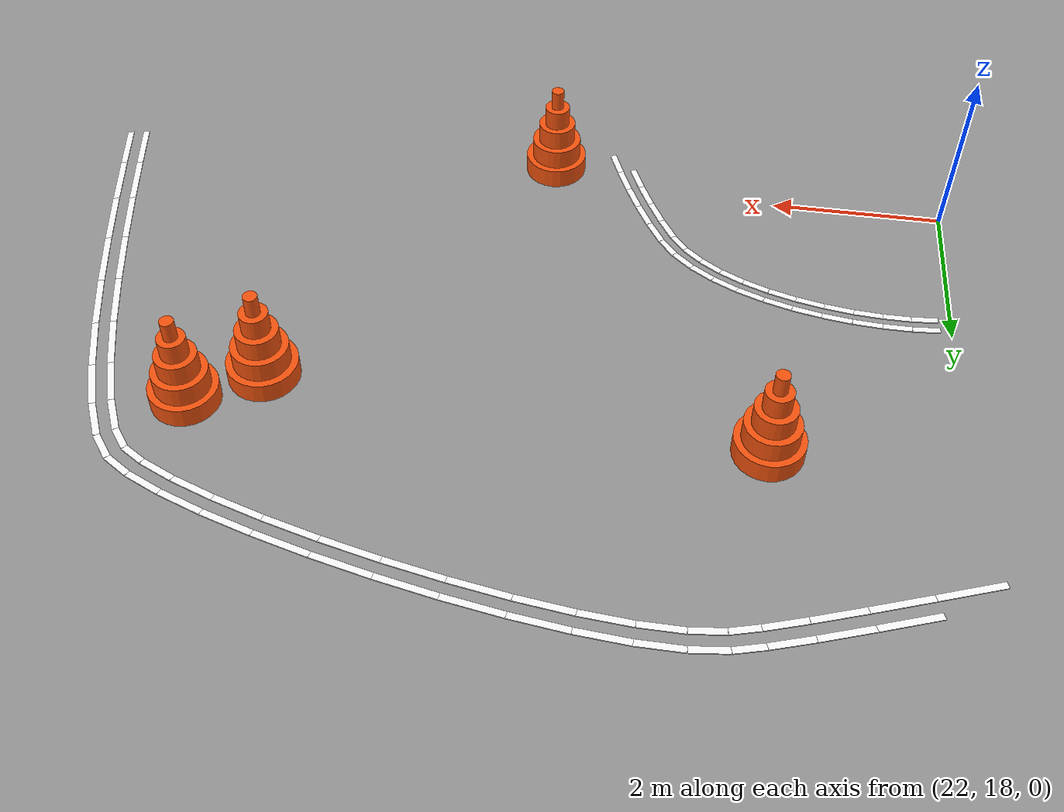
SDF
<sdf version="1.9">
 <world name="igvc_competition">
  <model name="Line_001_0008">
   <static>1</static>
   <pose>32.0992 17.9567 0.011 0 0 1.763602</pose>
   <link name="link">
    <visual name="visual">
     <geometry><box><size>0.6409 0.0762 0.012</size></box></geometry>
     <material>
      <ambient>0.98 0.98 0.98 1</ambient>
      <diffuse>0.98 0.98 0.98 1</diffuse>
      <specular>0.05 0.05 0.05 1</specular>
      <emissive>0.9 0.9 0.9 1</emissive>
     </material>
    </visual>
   </link>
  </model>
  <model name="Line_001_0009">
   <static>1</static>
   <pose>32.2955 17.9952 0.011 0 0 1.763583</pose>
   <link name="link">
    <visual name="visual">
     <geometry><box><size>0.6425 0.0762 0.012</size></box></geometry>
     <material>
      <ambient>0.98 0.98 0.98 1</ambient>
      <diffuse>0.98 0.98 0.98 1</diffuse>
      <specular>0.05 0.05 0.05 1</specular>
      <emissive>0.9 0.9 0.9 1</emissive>
     </material>
    </visual>
   </link>
  </model>
  <model name="Line_001_0010">
   <static>1</static>
   <pose>31.9671 18.6151 0.011 0 0 1.773386</pose>
   <link name="link">
    <visual name="visual">
     <geometry><box><size>0.7023 0.0762 0.012</size></box></geometry>
     <material>
      <ambient>0.98 0.98 0.98 1</ambient>
      <diffuse>0.98 0.98 0.98 1</diffuse>
      <specular>0.05 0.05 0.05 1</specular>
      <emissive>0.9 0.9 0.9 1</emissive>
     </material>
    </visual>
   </link>
  </model>
  <model name="Line_001_0011">
   <static>1</static>
   <pose>32.1630 18.6555 0.011 0 0 1.773314</pose>
   <link name="link">
    <visual name="visual">
     <geometry><box><size>0.7045 0.0762 0.012</size></box></geometry>
     <material>
      <ambient>0.98 0.98 0.98 1</ambient>
      <diffuse>0.98 0.98 0.98 1</diffuse>
      <specular>0.05 0.05 0.05 1</specular>
      <emissive>0.9 0.9 0.9 1</emissive>
     </material>
    </visual>
   </link>
  </model>
  <model name="Line_001_0012">
   <static>1</static>
   <pose>31.8181 19.3171 0.011 0 0 1.786358</pose>
   <link name="link">
    <visual name="visual">
     <geometry><box><size>0.7331 0.0762 0.012</size></box></geometry>
     <material>
      <ambient>0.98 0.98 0.98 1</ambient>
      <diffuse>0.98 0.98 0.98 1</diffuse>
      <specular>0.05 0.05 0.05 1</specular>
      <emissive>0.9 0.9 0.9 1</emissive>
     </material>
    </visual>
   </link>
  </model>
  <model name="Line_001_0013">
   <static>1</static>
   <pose>32.0134 19.3602 0.011 0 0 1.786519</pose>
   <link name="link">
    <visual name="visual">
     <geometry><box><size>0.7363 0.0762 0.012</size></box></geometry>
     <material>
      <ambient>0.98 0.98 0.98 1</ambient>
      <diffuse>0.98 0.98 0.98 1</diffuse>
      <specular>0.05 0.05 0.05 1</specular>
      <emissive>0.9 0.9 0.9 1</emissive>
     </material>
    </visual>
   </link>
  </model>
  <model name="Line_001_0014">
   <static>1</static>
   <pose>31.6548 20.0320 0.011 0 0 1.804432</pose>
   <link name="link">
    <visual name="visual">
     <geometry><box><size>0.7334 0.0762 0.012</size></box></geometry>
     <material>
      <ambient>0.98 0.98 0.98 1</ambient>
      <diffuse>0.98 0.98 0.98 1</diffuse>
      <specular>0.05 0.05 0.05 1</specular>
      <emissive>0.9 0.9 0.9 1</emissive>
     </material>
    </visual>
   </link>
  </model>
  <model name="Line_001_0015">
   <static>1</static>
   <pose>31.8492 20.0786 0.011 0 0 1.804332</pose>
   <link name="link">
    <visual name="visual">
     <geometry><box><size>0.7376 0.0762 0.012</size></box></geometry>
     <material>
      <ambient>0.98 0.98 0.98 1</ambient>
      <diffuse>0.98 0.98 0.98 1</diffuse>
      <specular>0.05 0.05 0.05 1</specular>
      <emissive>0.9 0.9 0.9 1</emissive>
     </material>
    </visual>
   </link>
  </model>
  <model name="Line_001_0016">
   <static>1</static>
   <pose>31.4800 20.7287 0.011 0 0 1.829155</pose>
   <link name="link">
    <visual name="visual">
     <geometry><box><size>0.7033 0.0762 0.012</size></box></geometry>
     <material>
      <ambient>0.98 0.98 0.98 1</ambient>
      <diffuse>0.98 0.98 0.98 1</diffuse>
      <specular>0.05 0.05 0.05 1</specular>
      <emissive>0.9 0.9 0.9 1</emissive>
     </material>
    </visual>
   </link>
  </model>
  <model name="Line_001_0017">
   <static>1</static>
   <pose>31.6732 20.7803 0.011 0 0 1.829211</pose>
   <link name="link">
    <visual name="visual">
     <geometry><box><size>0.7095 0.0762 0.012</size></box></geometry>
     <material>
      <ambient>0.98 0.98 0.98 1</ambient>
      <diffuse>0.98 0.98 0.98 1</diffuse>
      <specular>0.05 0.05 0.05 1</specular>
      <emissive>0.9 0.9 0.9 1</emissive>
     </material>
    </visual>
   </link>
  </model>
  <model name="Line_001_0018">
   <static>1</static>
   <pose>31.2968 21.3763 0.011 0 0 1.865441</pose>
   <link name="link">
    <visual name="visual">
     <geometry><box><size>0.6429 0.0762 0.012</size></box></geometry>
     <material>
      <ambient>0.98 0.98 0.98 1</ambient>
      <diffuse>0.98 0.98 0.98 1</diffuse>
      <specular>0.05 0.05 0.05 1</specular>
      <emissive>0.9 0.9 0.9 1</emissive>
     </material>
    </visual>
   </link>
  </model>
  <model name="Line_001_0019">
   <static>1</static>
   <pose>31.4879 21.4354 0.011 0 0 1.865395</pose>
   <link name="link">
    <visual name="visual">
     <geometry><box><size>0.6523 0.0762 0.012</size></box></geometry>
     <material>
      <ambient>0.98 0.98 0.98 1</ambient>
      <diffuse>0.98 0.98 0.98 1</diffuse>
      <specular>0.05 0.05 0.05 1</specular>
      <emissive>0.9 0.9 0.9 1</emissive>
     </material>
    </visual>
   </link>
  </model>
  <model name="Line_001_0020">
   <static>1</static>
   <pose>31.1084 21.9432 0.011 0 0 1.922213</pose>
   <link name="link">
    <visual name="visual">
     <geometry><box><size>0.5523 0.0762 0.012</size></box></geometry>
     <material>
      <ambient>0.98 0.98 0.98 1</ambient>
      <diffuse>0.98 0.98 0.98 1</diffuse>
      <specular>0.05 0.05 0.05 1</specular>
      <emissive>0.9 0.9 0.9 1</emissive>
     </material>
    </visual>
   </link>
  </model>
  <model name="Line_001_0021">
   <static>1</static>
   <pose>31.2953 22.0141 0.011 0 0 1.922726</pose>
   <link name="link">
    <visual name="visual">
     <geometry><box><size>0.5680 0.0762 0.012</size></box></geometry>
     <material>
      <ambient>0.98 0.98 0.98 1</ambient>
      <diffuse>0.98 0.98 0.98 1</diffuse>
      <specular>0.05 0.05 0.05 1</specular>
      <emissive>0.9 0.9 0.9 1</emissive>
     </material>
    </visual>
   </link>
  </model>
  <model name="Line_001_0022">
   <static>1</static>
   <pose>30.9195 22.3961 0.011 0 0 2.022287</pose>
   <link name="link">
    <visual name="visual">
     <geometry><box><size>0.4304 0.0762 0.012</size></box></geometry>
     <material>
      <ambient>0.98 0.98 0.98 1</ambient>
      <diffuse>0.98 0.98 0.98 1</diffuse>
      <specular>0.05 0.05 0.05 1</specular>
      <emissive>0.9 0.9 0.9 1</emissive>
     </material>
    </visual>
   </link>
  </model>
  <model name="Line_001_0023">
   <static>1</static>
   <pose>31.0962 22.4884 0.011 0 0 2.024280</pose>
   <link name="link">
    <visual name="visual">
     <geometry><box><size>0.4620 0.0762 0.012</size></box></geometry>
     <material>
      <ambient>0.98 0.98 0.98 1</ambient>
      <diffuse>0.98 0.98 0.98 1</diffuse>
      <specular>0.05 0.05 0.05 1</specular>
      <emissive>0.9 0.9 0.9 1</emissive>
     </material>
    </visual>
   </link>
  </model>
  <model name="Line_001_0024">
   <static>1</static>
   <pose>30.7373 22.7022 0.011 0 0 2.236530</pose>
   <link name="link">
    <visual name="visual">
     <geometry><box><size>0.2861 0.0762 0.012</size></box></geometry>
     <material>
      <ambient>0.98 0.98 0.98 1</ambient>
      <diffuse>0.98 0.98 0.98 1</diffuse>
      <specular>0.05 0.05 0.05 1</specular>
      <emissive>0.9 0.9 0.9 1</emissive>
     </material>
    </visual>
   </link>
  </model>
  <model name="Line_001_0025">
   <static>1</static>
   <pose>30.8888 22.8298 0.011 0 0 2.241879</pose>
   <link name="link">
    <visual name="visual">
     <geometry><box><size>0.3416 0.0762 0.012</size></box></geometry>
     <material>
      <ambient>0.98 0.98 0.98 1</ambient>
      <diffuse>0.98 0.98 0.98 1</diffuse>
      <specular>0.05 0.05 0.05 1</specular>
      <emissive>0.9 0.9 0.9 1</emissive>
     </material>
    </visual>
   </link>
  </model>
  <model name="Line_001_0026">
   <static>1</static>
   <pose>30.5274 22.8905 0.011 0 0 2.584104</pose>
   <link name="link">
    <visual name="visual">
     <geometry><box><size>0.2864 0.0762 0.012</size></box></geometry>
     <material>
      <ambient>0.98 0.98 0.98 1</ambient>
      <diffuse>0.98 0.98 0.98 1</diffuse>
      <specular>0.05 0.05 0.05 1</specular>
      <emissive>0.9 0.9 0.9 1</emissive>
     </material>
    </visual>
   </link>
  </model>
  <model name="Line_001_0027">
   <static>1</static>
   <pose>30.6416 23.0529 0.011 0 0 2.576104</pose>
   <link name="link">
    <visual name="visual">
     <geometry><box><size>0.3339 0.0762 0.012</size></box></geometry>
     <material>
      <ambient>0.98 0.98 0.98 1</ambient>
      <diffuse>0.98 0.98 0.98 1</diffuse>
      <specular>0.05 0.05 0.05 1</specular>
      <emissive>0.9 0.9 0.9 1</emissive>
     </material>
    </visual>
   </link>
  </model>
  <model name="Line_001_0028">
   <static>1</static>
   <pose>30.2178 23.0513 0.011 0 0 2.716508</pose>
   <link name="link">
    <visual name="visual">
     <geometry><box><size>0.4130 0.0762 0.012</size></box></geometry>
     <material>
      <ambient>0.98 0.98 0.98 1</ambient>
      <diffuse>0.98 0.98 0.98 1</diffuse>
      <specular>0.05 0.05 0.05 1</specular>
      <emissive>0.9 0.9 0.9 1</emissive>
     </material>
    </visual>
   </link>
  </model>
  <model name="Line_001_0029">
   <static>1</static>
   <pose>30.3031 23.2320 0.011 0 0 2.715881</pose>
   <link name="link">
    <visual name="visual">
     <geometry><box><size>0.4339 0.0762 0.012</size></box></geometry>
     <material>
      <ambient>0.98 0.98 0.98 1</ambient>
      <diffuse>0.98 0.98 0.98 1</diffuse>
      <specular>0.05 0.05 0.05 1</specular>
      <emissive>0.9 0.9 0.9 1</emissive>
     </material>
    </visual>
   </link>
  </model>
  <model name="Line_001_0030">
   <static>1</static>
   <pose>29.7892 23.2248 0.011 0 0 2.789836</pose>
   <link name="link">
    <visual name="visual">
     <geometry><box><size>0.5123 0.0762 0.012</size></box></geometry>
     <material>
      <ambient>0.98 0.98 0.98 1</ambient>
      <diffuse>0.98 0.98 0.98 1</diffuse>
      <specular>0.05 0.05 0.05 1</specular>
      <emissive>0.9 0.9 0.9 1</emissive>
     </material>
    </visual>
   </link>
  </model>
  <model name="Line_001_0031">
   <static>1</static>
   <pose>29.8593 23.4120 0.011 0 0 2.789694</pose>
   <link name="link">
    <visual name="visual">
     <geometry><box><size>0.5245 0.0762 0.012</size></box></geometry>
     <material>
      <ambient>0.98 0.98 0.98 1</ambient>
      <diffuse>0.98 0.98 0.98 1</diffuse>
      <specular>0.05 0.05 0.05 1</specular>
      <emissive>0.9 0.9 0.9 1</emissive>
     </material>
    </visual>
   </link>
  </model>
  <model name="Line_001_0032">
   <static>1</static>
   <pose>29.2683 23.4007 0.011 0 0 2.838454</pose>
   <link name="link">
    <visual name="visual">
     <geometry><box><size>0.5879 0.0762 0.012</size></box></geometry>
     <material>
      <ambient>0.98 0.98 0.98 1</ambient>
      <diffuse>0.98 0.98 0.98 1</diffuse>
      <specular>0.05 0.05 0.05 1</specular>
      <emissive>0.9 0.9 0.9 1</emissive>
     </material>
    </visual>
   </link>
  </model>
  <model name="Line_001_0033">
   <static>1</static>
   <pose>29.3285 23.5914 0.011 0 0 2.838558</pose>
   <link name="link">
    <visual name="visual">
     <geometry><box><size>0.5965 0.0762 0.012</size></box></geometry>
     <material>
      <ambient>0.98 0.98 0.98 1</ambient>
      <diffuse>0.98 0.98 0.98 1</diffuse>
      <specular>0.05 0.05 0.05 1</specular>
      <emissive>0.9 0.9 0.9 1</emissive>
     </material>
    </visual>
   </link>
  </model>
  <model name="Line_001_0034">
   <static>1</static>
   <pose>28.6787 23.5726 0.011 0 0 2.875861</pose>
   <link name="link">
    <visual name="visual">
     <geometry><box><size>0.6405 0.0762 0.012</size></box></geometry>
     <material>
      <ambient>0.98 0.98 0.98 1</ambient>
      <diffuse>0.98 0.98 0.98 1</diffuse>
      <specular>0.05 0.05 0.05 1</specular>
      <emissive>0.9 0.9 0.9 1</emissive>
     </material>
    </visual>
   </link>
  </model>
  <model name="Line_001_0035">
   <static>1</static>
   <pose>28.7315 23.7655 0.011 0 0 2.875747</pose>
   <link name="link">
    <visual name="visual">
     <geometry><box><size>0.6474 0.0762 0.012</size></box></geometry>
     <material>
      <ambient>0.98 0.98 0.98 1</ambient>
      <diffuse>0.98 0.98 0.98 1</diffuse>
      <specular>0.05 0.05 0.05 1</specular>
      <emissive>0.9 0.9 0.9 1</emissive>
     </material>
    </visual>
   </link>
  </model>
  <model name="Line_001_0036">
   <static>1</static>
   <pose>28.0437 23.7343 0.011 0 0 2.907905</pose>
   <link name="link">
    <visual name="visual">
     <geometry><box><size>0.6702 0.0762 0.012</size></box></geometry>
     <material>
      <ambient>0.98 0.98 0.98 1</ambient>
      <diffuse>0.98 0.98 0.98 1</diffuse>
      <specular>0.05 0.05 0.05 1</specular>
      <emissive>0.9 0.9 0.9 1</emissive>
     </material>
    </visual>
   </link>
  </model>
  <model name="Line_001_0037">
   <static>1</static>
   <pose>28.0900 23.9288 0.011 0 0 2.907980</pose>
   <link name="link">
    <visual name="visual">
     <geometry><box><size>0.6765 0.0762 0.012</size></box></geometry>
     <material>
      <ambient>0.98 0.98 0.98 1</ambient>
      <diffuse>0.98 0.98 0.98 1</diffuse>
      <specular>0.05 0.05 0.05 1</specular>
      <emissive>0.9 0.9 0.9 1</emissive>
     </material>
    </visual>
   </link>
  </model>
  <model name="Line_001_0038">
   <static>1</static>
   <pose>27.3861 23.8800 0.011 0 0 2.939071</pose>
   <link name="link">
    <visual name="visual">
     <geometry><box><size>0.6771 0.0762 0.012</size></box></geometry>
     <material>
      <ambient>0.98 0.98 0.98 1</ambient>
      <diffuse>0.98 0.98 0.98 1</diffuse>
      <specular>0.05 0.05 0.05 1</specular>
      <emissive>0.9 0.9 0.9 1</emissive>
     </material>
    </visual>
   </link>
  </model>
  <model name="Line_001_0039">
   <static>1</static>
   <pose>27.4262 24.0759 0.011 0 0 2.938918</pose>
   <link name="link">
    <visual name="visual">
     <geometry><box><size>0.6836 0.0762 0.012</size></box></geometry>
     <material>
      <ambient>0.98 0.98 0.98 1</ambient>
      <diffuse>0.98 0.98 0.98 1</diffuse>
      <specular>0.05 0.05 0.05 1</specular>
      <emissive>0.9 0.9 0.9 1</emissive>
     </material>
    </visual>
   </link>
  </model>
  <model name="Line_001_0040">
   <static>1</static>
   <pose>26.7285 24.0039 0.011 0 0 2.972019</pose>
   <link name="link">
    <visual name="visual">
     <geometry><box><size>0.6613 0.0762 0.012</size></box></geometry>
     <material>
      <ambient>0.98 0.98 0.98 1</ambient>
      <diffuse>0.98 0.98 0.98 1</diffuse>
      <specular>0.05 0.05 0.05 1</specular>
      <emissive>0.9 0.9 0.9 1</emissive>
     </material>
    </visual>
   </link>
  </model>
  <model name="Line_001_0041">
   <static>1</static>
   <pose>26.7619 24.2011 0.011 0 0 2.972189</pose>
   <link name="link">
    <visual name="visual">
     <geometry><box><size>0.6685 0.0762 0.012</size></box></geometry>
     <material>
      <ambient>0.98 0.98 0.98 1</ambient>
      <diffuse>0.98 0.98 0.98 1</diffuse>
      <specular>0.05 0.05 0.05 1</specular>
      <emissive>0.9 0.9 0.9 1</emissive>
     </material>
    </visual>
   </link>
  </model>
  <model name="Line_001_0042">
   <static>1</static>
   <pose>26.0938 24.1002 0.011 0 0 3.011025</pose>
   <link name="link">
    <visual name="visual">
     <geometry><box><size>0.6229 0.0762 0.012</size></box></geometry>
     <material>
      <ambient>0.98 0.98 0.98 1</ambient>
      <diffuse>0.98 0.98 0.98 1</diffuse>
      <specular>0.05 0.05 0.05 1</specular>
      <emissive>0.9 0.9 0.9 1</emissive>
     </material>
    </visual>
   </link>
  </model>
  <model name="Line_001_0043">
   <static>1</static>
   <pose>26.1193 24.2985 0.011 0 0 3.010955</pose>
   <link name="link">
    <visual name="visual">
     <geometry><box><size>0.6318 0.0762 0.012</size></box></geometry>
     <material>
      <ambient>0.98 0.98 0.98 1</ambient>
      <diffuse>0.98 0.98 0.98 1</diffuse>
      <specular>0.05 0.05 0.05 1</specular>
      <emissive>0.9 0.9 0.9 1</emissive>
     </material>
    </visual>
   </link>
  </model>
  <model name="Line_001_0044">
   <static>1</static>
   <pose>25.5050 24.1634 0.011 0 0 3.061230</pose>
   <link name="link">
    <visual name="visual">
     <geometry><box><size>0.5618 0.0762 0.012</size></box></geometry>
     <material>
      <ambient>0.98 0.98 0.98 1</ambient>
      <diffuse>0.98 0.98 0.98 1</diffuse>
      <specular>0.05 0.05 0.05 1</specular>
      <emissive>0.9 0.9 0.9 1</emissive>
     </material>
    </visual>
   </link>
  </model>
  <model name="Line_001_0045">
   <static>1</static>
   <pose>25.5199 24.3627 0.011 0 0 3.061402</pose>
   <link name="link">
    <visual name="visual">
     <geometry><box><size>0.5742 0.0762 0.012</size></box></geometry>
     <material>
      <ambient>0.98 0.98 0.98 1</ambient>
      <diffuse>0.98 0.98 0.98 1</diffuse>
      <specular>0.05 0.05 0.05 1</specular>
      <emissive>0.9 0.9 0.9 1</emissive>
     </material>
    </visual>
   </link>
  </model>
  <model name="Line_001_0046">
   <static>1</static>
   <pose>24.9858 24.1877 0.011 0 0 3.134068</pose>
   <link name="link">
    <visual name="visual">
     <geometry><box><size>0.4784 0.0762 0.012</size></box></geometry>
     <material>
      <ambient>0.98 0.98 0.98 1</ambient>
      <diffuse>0.98 0.98 0.98 1</diffuse>
      <specular>0.05 0.05 0.05 1</specular>
      <emissive>0.9 0.9 0.9 1</emissive>
     </material>
    </visual>
   </link>
  </model>
  <model name="Line_001_0047">
   <static>1</static>
   <pose>24.9849 24.3875 0.011 0 0 3.134358</pose>
   <link name="link">
    <visual name="visual">
     <geometry><box><size>0.4976 0.0762 0.012</size></box></geometry>
     <material>
      <ambient>0.98 0.98 0.98 1</ambient>
      <diffuse>0.98 0.98 0.98 1</diffuse>
      <specular>0.05 0.05 0.05 1</specular>
      <emissive>0.9 0.9 0.9 1</emissive>
     </material>
    </visual>
   </link>
  </model>
  <model name="Line_001_0048">
   <static>1</static>
   <pose>24.5595 24.1684 0.011 0 0 -3.029029</pose>
   <link name="link">
    <visual name="visual">
     <geometry><box><size>0.3766 0.0762 0.012</size></box></geometry>
     <material>
      <ambient>0.98 0.98 0.98 1</ambient>
      <diffuse>0.98 0.98 0.98 1</diffuse>
      <specular>0.05 0.05 0.05 1</specular>
      <emissive>0.9 0.9 0.9 1</emissive>
     </material>
    </visual>
   </link>
  </model>
  <model name="Line_001_0049">
   <static>1</static>
   <pose>24.5358 24.3665 0.011 0 0 -3.028279</pose>
   <link name="link">
    <visual name="visual">
     <geometry><box><size>0.4033 0.0762 0.012</size></box></geometry>
     <material>
      <ambient>0.98 0.98 0.98 1</ambient>
      <diffuse>0.98 0.98 0.98 1</diffuse>
      <specular>0.05 0.05 0.05 1</specular>
      <emissive>0.9 0.9 0.9 1</emissive>
     </material>
    </visual>
   </link>
  </model>
  <model name="Line_001_0050">
   <static>1</static>
   <pose>24.2183 24.1061 0.011 0 0 -2.881253</pose>
   <link name="link">
    <visual name="visual">
     <geometry><box><size>0.3189 0.0762 0.012</size></box></geometry>
     <material>
      <ambient>0.98 0.98 0.98 1</ambient>
      <diffuse>0.98 0.98 0.98 1</diffuse>
      <specular>0.05 0.05 0.05 1</specular>
      <emissive>0.9 0.9 0.9 1</emissive>
     </material>
    </visual>
   </link>
  </model>
  <model name="Line_001_0051">
   <static>1</static>
   <pose>24.1718 24.3004 0.011 0 0 -2.882780</pose>
   <link name="link">
    <visual name="visual">
     <geometry><box><size>0.3384 0.0762 0.012</size></box></geometry>
     <material>
      <ambient>0.98 0.98 0.98 1</ambient>
      <diffuse>0.98 0.98 0.98 1</diffuse>
      <specular>0.05 0.05 0.05 1</specular>
      <emissive>0.9 0.9 0.9 1</emissive>
     </material>
    </visual>
   </link>
  </model>
  <model name="Line_001_0052">
   <static>1</static>
   <pose>23.8422 23.9946 0.011 0 0 -2.833958</pose>
   <link name="link">
    <visual name="visual">
     <geometry><box><size>0.4660 0.0762 0.012</size></box></geometry>
     <material>
      <ambient>0.98 0.98 0.98 1</ambient>
      <diffuse>0.98 0.98 0.98 1</diffuse>
      <specular>0.05 0.05 0.05 1</specular>
      <emissive>0.9 0.9 0.9 1</emissive>
     </material>
    </visual>
   </link>
  </model>
  <model name="Line_001_0053">
   <static>1</static>
   <pose>23.7829 24.1855 0.011 0 0 -2.834154</pose>
   <link name="link">
    <visual name="visual">
     <geometry><box><size>0.4729 0.0762 0.012</size></box></geometry>
     <material>
      <ambient>0.98 0.98 0.98 1</ambient>
      <diffuse>0.98 0.98 0.98 1</diffuse>
      <specular>0.05 0.05 0.05 1</specular>
      <emissive>0.9 0.9 0.9 1</emissive>
     </material>
    </visual>
   </link>
  </model>
  <model name="Line_001_0054">
   <static>1</static>
   <pose>23.3445 23.8302 0.011 0 0 -2.813597</pose>
   <link name="link">
    <visual name="visual">
     <geometry><box><size>0.5823 0.0762 0.012</size></box></geometry>
     <material>
      <ambient>0.98 0.98 0.98 1</ambient>
      <diffuse>0.98 0.98 0.98 1</diffuse>
      <specular>0.05 0.05 0.05 1</specular>
      <emissive>0.9 0.9 0.9 1</emissive>
     </material>
    </visual>
   </link>
  </model>
  <model name="Line_001_0055">
   <static>1</static>
   <pose>23.2805 24.0197 0.011 0 0 -2.813576</pose>
   <link name="link">
    <visual name="visual">
     <geometry><box><size>0.5854 0.0762 0.012</size></box></geometry>
     <material>
      <ambient>0.98 0.98 0.98 1</ambient>
      <diffuse>0.98 0.98 0.98 1</diffuse>
      <specular>0.05 0.05 0.05 1</specular>
      <emissive>0.9 0.9 0.9 1</emissive>
     </material>
    </visual>
   </link>
  </model>
  <model name="Line_001_0056">
   <static>1</static>
   <pose>22.7523 23.6252 0.011 0 0 -2.803673</pose>
   <link name="link">
    <visual name="visual">
     <geometry><box><size>0.6708 0.0762 0.012</size></box></geometry>
     <material>
      <ambient>0.98 0.98 0.98 1</ambient>
      <diffuse>0.98 0.98 0.98 1</diffuse>
      <specular>0.05 0.05 0.05 1</specular>
      <emissive>0.9 0.9 0.9 1</emissive>
     </material>
    </visual>
   </link>
  </model>
  <model name="Line_001_0057">
   <static>1</static>
   <pose>22.6863 23.8140 0.011 0 0 -2.803752</pose>
   <link name="link">
    <visual name="visual">
     <geometry><box><size>0.6722 0.0762 0.012</size></box></geometry>
     <material>
      <ambient>0.98 0.98 0.98 1</ambient>
      <diffuse>0.98 0.98 0.98 1</diffuse>
      <specular>0.05 0.05 0.05 1</specular>
      <emissive>0.9 0.9 0.9 1</emissive>
     </material>
    </visual>
   </link>
  </model>
  <model name="Line_001_0058">
   <static>1</static>
   <pose>22.0911 23.3913 0.011 0 0 -2.799883</pose>
   <link name="link">
    <visual name="visual">
     <geometry><box><size>0.7320 0.0762 0.012</size></box></geometry>
     <material>
      <ambient>0.98 0.98 0.98 1</ambient>
      <diffuse>0.98 0.98 0.98 1</diffuse>
      <specular>0.05 0.05 0.05 1</specular>
      <emissive>0.9 0.9 0.9 1</emissive>
     </material>
    </visual>
   </link>
  </model>
  <model name="Line_002_0017">
   <static>1</static>
   <pose>25.9868 17.4586 0.011 0 0 1.928847</pose>
   <link name="link">
    <visual name="visual">
     <geometry><box><size>0.3416 0.0762 0.012</size></box></geometry>
     <material>
      <ambient>0.98 0.98 0.98 1</ambient>
      <diffuse>0.98 0.98 0.98 1</diffuse>
      <specular>0.05 0.05 0.05 1</specular>
      <emissive>0.9 0.9 0.9 1</emissive>
     </material>
    </visual>
   </link>
  </model>
  <model name="Line_002_0018">
   <static>1</static>
   <pose>25.7096 17.7184 0.011 0 0 1.960844</pose>
   <link name="link">
    <visual name="visual">
     <geometry><box><size>0.3406 0.0762 0.012</size></box></geometry>
     <material>
      <ambient>0.98 0.98 0.98 1</ambient>
      <diffuse>0.98 0.98 0.98 1</diffuse>
      <specular>0.05 0.05 0.05 1</specular>
      <emissive>0.9 0.9 0.9 1</emissive>
     </material>
    </visual>
   </link>
  </model>
  <model name="Line_002_0019">
   <static>1</static>
   <pose>25.8612 17.7784 0.011 0 0 1.960538</pose>
   <link name="link">
    <visual name="visual">
     <geometry><box><size>0.3458 0.0762 0.012</size></box></geometry>
     <material>
      <ambient>0.98 0.98 0.98 1</ambient>
      <diffuse>0.98 0.98 0.98 1</diffuse>
      <specular>0.05 0.05 0.05 1</specular>
      <emissive>0.9 0.9 0.9 1</emissive>
     </material>
    </visual>
   </link>
  </model>
  <model name="Line_002_0020">
   <static>1</static>
   <pose>25.5746 18.0302 0.011 0 0 1.998034</pose>
   <link name="link">
    <visual name="visual">
     <geometry><box><size>0.3391 0.0762 0.012</size></box></geometry>
     <material>
      <ambient>0.98 0.98 0.98 1</ambient>
      <diffuse>0.98 0.98 0.98 1</diffuse>
      <specular>0.05 0.05 0.05 1</specular>
      <emissive>0.9 0.9 0.9 1</emissive>
     </material>
    </visual>
   </link>
  </model>
  <model name="Line_002_0021">
   <static>1</static>
   <pose>25.7239 18.0956 0.011 0 0 1.998190</pose>
   <link name="link">
    <visual name="visual">
     <geometry><box><size>0.3455 0.0762 0.012</size></box></geometry>
     <material>
      <ambient>0.98 0.98 0.98 1</ambient>
      <diffuse>0.98 0.98 0.98 1</diffuse>
      <specular>0.05 0.05 0.05 1</specular>
      <emissive>0.9 0.9 0.9 1</emissive>
     </material>
    </visual>
   </link>
  </model>
  <model name="Line_002_0022">
   <static>1</static>
   <pose>25.4286 18.3329 0.011 0 0 2.042634</pose>
   <link name="link">
    <visual name="visual">
     <geometry><box><size>0.3331 0.0762 0.012</size></box></geometry>
     <material>
      <ambient>0.98 0.98 0.98 1</ambient>
      <diffuse>0.98 0.98 0.98 1</diffuse>
      <specular>0.05 0.05 0.05 1</specular>
      <emissive>0.9 0.9 0.9 1</emissive>
     </material>
    </visual>
   </link>
  </model>
  <model name="Line_002_0023">
   <static>1</static>
   <pose>25.5748 18.4045 0.011 0 0 2.042846</pose>
   <link name="link">
    <visual name="visual">
     <geometry><box><size>0.3407 0.0762 0.012</size></box></geometry>
     <material>
      <ambient>0.98 0.98 0.98 1</ambient>
      <diffuse>0.98 0.98 0.98 1</diffuse>
      <specular>0.05 0.05 0.05 1</specular>
      <emissive>0.9 0.9 0.9 1</emissive>
     </material>
    </visual>
   </link>
  </model>
  <model name="Line_002_0024">
   <static>1</static>
   <pose>25.2726 18.6196 0.011 0 0 2.096531</pose>
   <link name="link">
    <visual name="visual">
     <geometry><box><size>0.3200 0.0762 0.012</size></box></geometry>
     <material>
      <ambient>0.98 0.98 0.98 1</ambient>
      <diffuse>0.98 0.98 0.98 1</diffuse>
      <specular>0.05 0.05 0.05 1</specular>
      <emissive>0.9 0.9 0.9 1</emissive>
     </material>
    </visual>
   </link>
  </model>
  <model name="Line_002_0025">
   <static>1</static>
   <pose>25.4133 18.7009 0.011 0 0 2.097430</pose>
   <link name="link">
    <visual name="visual">
     <geometry><box><size>0.3346 0.0762 0.012</size></box></geometry>
     <material>
      <ambient>0.98 0.98 0.98 1</ambient>
      <diffuse>0.98 0.98 0.98 1</diffuse>
      <specular>0.05 0.05 0.05 1</specular>
      <emissive>0.9 0.9 0.9 1</emissive>
     </material>
    </visual>
   </link>
  </model>
  <model name="Line_002_0026">
   <static>1</static>
   <pose>25.1155 18.8571 0.011 0 0 2.230091</pose>
   <link name="link">
    <visual name="visual">
     <geometry><box><size>0.2508 0.0762 0.012</size></box></geometry>
     <material>
      <ambient>0.98 0.98 0.98 1</ambient>
      <diffuse>0.98 0.98 0.98 1</diffuse>
      <specular>0.05 0.05 0.05 1</specular>
      <emissive>0.9 0.9 0.9 1</emissive>
     </material>
    </visual>
   </link>
  </model>
  <model name="Line_002_0027">
   <static>1</static>
   <pose>25.2448 18.9541 0.011 0 0 2.231234</pose>
   <link name="link">
    <visual name="visual">
     <geometry><box><size>0.2752 0.0762 0.012</size></box></geometry>
     <material>
      <ambient>0.98 0.98 0.98 1</ambient>
      <diffuse>0.98 0.98 0.98 1</diffuse>
      <specular>0.05 0.05 0.05 1</specular>
      <emissive>0.9 0.9 0.9 1</emissive>
     </material>
    </visual>
   </link>
  </model>
  <model name="Line_002_0028">
   <static>1</static>
   <pose>24.9403 19.0446 0.011 0 0 2.409677</pose>
   <link name="link">
    <visual name="visual">
     <geometry><box><size>0.2646 0.0762 0.012</size></box></geometry>
     <material>
      <ambient>0.98 0.98 0.98 1</ambient>
      <diffuse>0.98 0.98 0.98 1</diffuse>
      <specular>0.05 0.05 0.05 1</specular>
      <emissive>0.9 0.9 0.9 1</emissive>
     </material>
    </visual>
   </link>
  </model>
  <model name="Line_002_0029">
   <static>1</static>
   <pose>25.0526 19.1598 0.011 0 0 2.408624</pose>
   <link name="link">
    <visual name="visual">
     <geometry><box><size>0.2901 0.0762 0.012</size></box></geometry>
     <material>
      <ambient>0.98 0.98 0.98 1</ambient>
      <diffuse>0.98 0.98 0.98 1</diffuse>
      <specular>0.05 0.05 0.05 1</specular>
      <emissive>0.9 0.9 0.9 1</emissive>
     </material>
    </visual>
   </link>
  </model>
  <model name="Line_002_0030">
   <static>1</static>
   <pose>24.7240 19.2116 0.011 0 0 2.553590</pose>
   <link name="link">
    <visual name="visual">
     <geometry><box><size>0.2834 0.0762 0.012</size></box></geometry>
     <material>
      <ambient>0.98 0.98 0.98 1</ambient>
      <diffuse>0.98 0.98 0.98 1</diffuse>
      <specular>0.05 0.05 0.05 1</specular>
      <emissive>0.9 0.9 0.9 1</emissive>
     </material>
    </visual>
   </link>
  </model>
  <model name="Line_002_0031">
   <static>1</static>
   <pose>24.8182 19.3413 0.011 0 0 2.553317</pose>
   <link name="link">
    <visual name="visual">
     <geometry><box><size>0.3044 0.0762 0.012</size></box></geometry>
     <material>
      <ambient>0.98 0.98 0.98 1</ambient>
      <diffuse>0.98 0.98 0.98 1</diffuse>
      <specular>0.05 0.05 0.05 1</specular>
      <emissive>0.9 0.9 0.9 1</emissive>
     </material>
    </visual>
   </link>
  </model>
  <model name="Line_002_0032">
   <static>1</static>
   <pose>24.4721 19.3584 0.011 0 0 2.670957</pose>
   <link name="link">
    <visual name="visual">
     <geometry><box><size>0.3008 0.0762 0.012</size></box></geometry>
     <material>
      <ambient>0.98 0.98 0.98 1</ambient>
      <diffuse>0.98 0.98 0.98 1</diffuse>
      <specular>0.05 0.05 0.05 1</specular>
      <emissive>0.9 0.9 0.9 1</emissive>
     </material>
    </visual>
   </link>
  </model>
  <model name="Line_002_0033">
   <static>1</static>
   <pose>24.5498 19.4980 0.011 0 0 2.670500</pose>
   <link name="link">
    <visual name="visual">
     <geometry><box><size>0.3184 0.0762 0.012</size></box></geometry>
     <material>
      <ambient>0.98 0.98 0.98 1</ambient>
      <diffuse>0.98 0.98 0.98 1</diffuse>
      <specular>0.05 0.05 0.05 1</specular>
      <emissive>0.9 0.9 0.9 1</emissive>
     </material>
    </visual>
   </link>
  </model>
  <model name="Line_002_0034">
   <static>1</static>
   <pose>24.1912 19.4841 0.011 0 0 2.768092</pose>
   <link name="link">
    <visual name="visual">
     <geometry><box><size>0.3154 0.0762 0.012</size></box></geometry>
     <material>
      <ambient>0.98 0.98 0.98 1</ambient>
      <diffuse>0.98 0.98 0.98 1</diffuse>
      <specular>0.05 0.05 0.05 1</specular>
      <emissive>0.9 0.9 0.9 1</emissive>
     </material>
    </visual>
   </link>
  </model>
  <model name="Line_002_0035">
   <static>1</static>
   <pose>24.2542 19.6305 0.011 0 0 2.768115</pose>
   <link name="link">
    <visual name="visual">
     <geometry><box><size>0.3303 0.0762 0.012</size></box></geometry>
     <material>
      <ambient>0.98 0.98 0.98 1</ambient>
      <diffuse>0.98 0.98 0.98 1</diffuse>
      <specular>0.05 0.05 0.05 1</specular>
      <emissive>0.9 0.9 0.9 1</emissive>
     </material>
    </visual>
   </link>
  </model>
  <model name="Line_002_0036">
   <static>1</static>
   <pose>23.8882 19.5882 0.011 0 0 2.852076</pose>
   <link name="link">
    <visual name="visual">
     <geometry><box><size>0.3258 0.0762 0.012</size></box></geometry>
     <material>
      <ambient>0.98 0.98 0.98 1</ambient>
      <diffuse>0.98 0.98 0.98 1</diffuse>
      <specular>0.05 0.05 0.05 1</specular>
      <emissive>0.9 0.9 0.9 1</emissive>
     </material>
    </visual>
   </link>
  </model>
  <model name="Line_002_0037">
   <static>1</static>
   <pose>23.9381 19.7392 0.011 0 0 2.851860</pose>
   <link name="link">
    <visual name="visual">
     <geometry><box><size>0.3388 0.0762 0.012</size></box></geometry>
     <material>
      <ambient>0.98 0.98 0.98 1</ambient>
      <diffuse>0.98 0.98 0.98 1</diffuse>
      <specular>0.05 0.05 0.05 1</specular>
      <emissive>0.9 0.9 0.9 1</emissive>
     </material>
    </visual>
   </link>
  </model>
  <model name="Line_002_0038">
   <static>1</static>
   <pose>23.5703 19.6701 0.011 0 0 2.926263</pose>
   <link name="link">
    <visual name="visual">
     <geometry><box><size>0.3314 0.0762 0.012</size></box></geometry>
     <material>
      <ambient>0.98 0.98 0.98 1</ambient>
      <diffuse>0.98 0.98 0.98 1</diffuse>
      <specular>0.05 0.05 0.05 1</specular>
      <emissive>0.9 0.9 0.9 1</emissive>
     </material>
    </visual>
   </link>
  </model>
  <model name="Line_002_0039">
   <static>1</static>
   <pose>23.6080 19.8242 0.011 0 0 2.926431</pose>
   <link name="link">
    <visual name="visual">
     <geometry><box><size>0.3433 0.0762 0.012</size></box></geometry>
     <material>
      <ambient>0.98 0.98 0.98 1</ambient>
      <diffuse>0.98 0.98 0.98 1</diffuse>
      <specular>0.05 0.05 0.05 1</specular>
      <emissive>0.9 0.9 0.9 1</emissive>
     </material>
    </visual>
   </link>
  </model>
  <model name="Line_002_0040">
   <static>1</static>
   <pose>23.2444 19.7295 0.011 0 0 2.996028</pose>
   <link name="link">
    <visual name="visual">
     <geometry><box><size>0.3316 0.0762 0.012</size></box></geometry>
     <material>
      <ambient>0.98 0.98 0.98 1</ambient>
      <diffuse>0.98 0.98 0.98 1</diffuse>
      <specular>0.05 0.05 0.05 1</specular>
      <emissive>0.9 0.9 0.9 1</emissive>
     </material>
    </visual>
   </link>
  </model>
  <model name="Line_002_0041">
   <static>1</static>
   <pose>23.2706 19.8858 0.011 0 0 2.995945</pose>
   <link name="link">
    <visual name="visual">
     <geometry><box><size>0.3431 0.0762 0.012</size></box></geometry>
     <material>
      <ambient>0.98 0.98 0.98 1</ambient>
      <diffuse>0.98 0.98 0.98 1</diffuse>
      <specular>0.05 0.05 0.05 1</specular>
      <emissive>0.9 0.9 0.9 1</emissive>
     </material>
    </visual>
   </link>
  </model>
  <model name="Line_002_0042">
   <static>1</static>
   <pose>22.9175 19.7662 0.011 0 0 3.064327</pose>
   <link name="link">
    <visual name="visual">
     <geometry><box><size>0.3265 0.0762 0.012</size></box></geometry>
     <material>
      <ambient>0.98 0.98 0.98 1</ambient>
      <diffuse>0.98 0.98 0.98 1</diffuse>
      <specular>0.05 0.05 0.05 1</specular>
      <emissive>0.9 0.9 0.9 1</emissive>
     </material>
    </visual>
   </link>
  </model>
  <model name="Line_002_0043">
   <static>1</static>
   <pose>22.9322 19.9238 0.011 0 0 3.064027</pose>
   <link name="link">
    <visual name="visual">
     <geometry><box><size>0.3381 0.0762 0.012</size></box></geometry>
     <material>
      <ambient>0.98 0.98 0.98 1</ambient>
      <diffuse>0.98 0.98 0.98 1</diffuse>
      <specular>0.05 0.05 0.05 1</specular>
      <emissive>0.9 0.9 0.9 1</emissive>
     </material>
    </visual>
   </link>
  </model>
  <model name="Line_002_0044">
   <static>1</static>
   <pose>22.5968 19.7800 0.011 0 0 3.133995</pose>
   <link name="link">
    <visual name="visual">
     <geometry><box><size>0.3159 0.0762 0.012</size></box></geometry>
     <material>
      <ambient>0.98 0.98 0.98 1</ambient>
      <diffuse>0.98 0.98 0.98 1</diffuse>
      <specular>0.05 0.05 0.05 1</specular>
      <emissive>0.9 0.9 0.9 1</emissive>
     </material>
    </visual>
   </link>
  </model>
  <model name="Line_002_0045">
   <static>1</static>
   <pose>22.5996 19.9381 0.011 0 0 3.134280</pose>
   <link name="link">
    <visual name="visual">
     <geometry><box><size>0.3282 0.0762 0.012</size></box></geometry>
     <material>
      <ambient>0.98 0.98 0.98 1</ambient>
      <diffuse>0.98 0.98 0.98 1</diffuse>
      <specular>0.05 0.05 0.05 1</specular>
      <emissive>0.9 0.9 0.9 1</emissive>
     </material>
    </visual>
   </link>
  </model>
  <model name="Line_002_0046">
   <static>1</static>
   <pose>22.2894 19.7709 0.011 0 0 -3.072805</pose>
   <link name="link">
    <visual name="visual">
     <geometry><box><size>0.2997 0.0762 0.012</size></box></geometry>
     <material>
      <ambient>0.98 0.98 0.98 1</ambient>
      <diffuse>0.98 0.98 0.98 1</diffuse>
      <specular>0.05 0.05 0.05 1</specular>
      <emissive>0.9 0.9 0.9 1</emissive>
     </material>
    </visual>
   </link>
  </model>
  <model name="Line_002_0047">
   <static>1</static>
   <pose>22.2790 19.9285 0.011 0 0 -3.072670</pose>
   <link name="link">
    <visual name="visual">
     <geometry><box><size>0.3136 0.0762 0.012</size></box></geometry>
     <material>
      <ambient>0.98 0.98 0.98 1</ambient>
      <diffuse>0.98 0.98 0.98 1</diffuse>
      <specular>0.05 0.05 0.05 1</specular>
      <emissive>0.9 0.9 0.9 1</emissive>
     </material>
    </visual>
   </link>
  </model>
  <model name="Cones_001">
   <static>1</static>
   <pose>30.2149 22.0732 0 0 0 0</pose>
   <link name="link">
    <collision name="collision">
     <pose>0 0 0.5985 0 0 0</pose>
     <geometry><cylinder><radius>0.3831</radius><length>1.1969</length></cylinder></geometry>
    </collision>
    <visual name="visual_0">
     <pose>0 0 0.1197 0 0 0</pose>
     <geometry><cylinder><radius>0.3831</radius><length>0.2394</length></cylinder></geometry>
     <material>
      <ambient>0.95 0.32 0.05 1.0</ambient>
      <diffuse>0.95 0.32 0.05 1.0</diffuse>
      <specular>0.05 0.05 0.05 1</specular>
     </material>
    </visual>
    <visual name="visual_1">
     <pose>0 0 0.3591 0 0 0</pose>
     <geometry><cylinder><radius>0.3065</radius><length>0.2394</length></cylinder></geometry>
     <material>
      <ambient>0.95 0.32 0.05 1.0</ambient>
      <diffuse>0.95 0.32 0.05 1.0</diffuse>
      <specular>0.05 0.05 0.05 1</specular>
     </material>
    </visual>
    <visual name="visual_2">
     <pose>0 0 0.5985 0 0 0</pose>
     <geometry><cylinder><radius>0.2299</radius><length>0.2394</length></cylinder></geometry>
     <material>
      <ambient>0.95 0.32 0.05 1.0</ambient>
      <diffuse>0.95 0.32 0.05 1.0</diffuse>
      <specular>0.05 0.05 0.05 1</specular>
     </material>
    </visual>
    <visual name="visual_3">
     <pose>0 0 0.8378 0 0 0</pose>
     <geometry><cylinder><radius>0.1532</radius><length>0.2394</length></cylinder></geometry>
     <material>
      <ambient>0.95 0.32 0.05 1.0</ambient>
      <diffuse>0.95 0.32 0.05 1.0</diffuse>
      <specular>0.05 0.05 0.05 1</specular>
     </material>
    </visual>
    <visual name="visual_4">
     <pose>0 0 1.0772 0 0 0</pose>
     <geometry><cylinder><radius>0.0766</radius><length>0.2394</length></cylinder></geometry>
     <material>
      <ambient>0.95 0.32 0.05 1.0</ambient>
      <diffuse>0.95 0.32 0.05 1.0</diffuse>
      <specular>0.05 0.05 0.05 1</specular>
     </material>
    </visual>
   </link>
  </model>
  <model name="Cones_055">
   <static>1</static>
   <pose>24.0328 21.9482 0 0 0 0</pose>
   <link name="link">
    <collision name="collision">
     <pose>0 0 0.5985 0 0 0</pose>
     <geometry><cylinder><radius>0.3831</radius><length>1.1969</length></cylinder></geometry>
    </collision>
    <visual name="visual_0">
     <pose>0 0 0.1197 0 0 0</pose>
     <geometry><cylinder><radius>0.3831</radius><length>0.2394</length></cylinder></geometry>
     <material>
      <ambient>0.95 0.32 0.05 1.0</ambient>
      <diffuse>0.95 0.32 0.05 1.0</diffuse>
      <specular>0.05 0.05 0.05 1</specular>
     </material>
    </visual>
    <visual name="visual_1">
     <pose>0 0 0.3591 0 0 0</pose>
     <geometry><cylinder><radius>0.3065</radius><length>0.2394</length></cylinder></geometry>
     <material>
      <ambient>0.95 0.32 0.05 1.0</ambient>
      <diffuse>0.95 0.32 0.05 1.0</diffuse>
      <specular>0.05 0.05 0.05 1</specular>
     </material>
    </visual>
    <visual name="visual_2">
     <pose>0 0 0.5985 0 0 0</pose>
     <geometry><cylinder><radius>0.2299</radius><length>0.2394</length></cylinder></geometry>
     <material>
      <ambient>0.95 0.32 0.05 1.0</ambient>
      <diffuse>0.95 0.32 0.05 1.0</diffuse>
      <specular>0.05 0.05 0.05 1</specular>
     </material>
    </visual>
    <visual name="visual_3">
     <pose>0 0 0.8378 0 0 0</pose>
     <geometry><cylinder><radius>0.1532</radius><length>0.2394</length></cylinder></geometry>
     <material>
      <ambient>0.95 0.32 0.05 1.0</ambient>
      <diffuse>0.95 0.32 0.05 1.0</diffuse>
      <specular>0.05 0.05 0.05 1</specular>
     </material>
    </visual>
    <visual name="visual_4">
     <pose>0 0 1.0772 0 0 0</pose>
     <geometry><cylinder><radius>0.0766</radius><length>0.2394</length></cylinder></geometry>
     <material>
      <ambient>0.95 0.32 0.05 1.0</ambient>
      <diffuse>0.95 0.32 0.05 1.0</diffuse>
      <specular>0.05 0.05 0.05 1</specular>
     </material>
    </visual>
   </link>
  </model>
  <model name="Cones_072">
   <static>1</static>
   <pose>26.7500 17.6360 0 0 0 0</pose>
   <link name="link">
    <collision name="collision">
     <pose>0 0 0.5985 0 0 0</pose>
     <geometry><cylinder><radius>0.3689</radius><length>1.1969</length></cylinder></geometry>
    </collision>
    <visual name="visual_0">
     <pose>0 0 0.1197 0 0 0</pose>
     <geometry><cylinder><radius>0.3689</radius><length>0.2394</length></cylinder></geometry>
     <material>
      <ambient>0.95 0.32 0.05 1.0</ambient>
      <diffuse>0.95 0.32 0.05 1.0</diffuse>
      <specular>0.05 0.05 0.05 1</specular>
     </material>
    </visual>
    <visual name="visual_1">
     <pose>0 0 0.3591 0 0 0</pose>
     <geometry><cylinder><radius>0.2951</radius><length>0.2394</length></cylinder></geometry>
     <material>
      <ambient>0.95 0.32 0.05 1.0</ambient>
      <diffuse>0.95 0.32 0.05 1.0</diffuse>
      <specular>0.05 0.05 0.05 1</specular>
     </material>
    </visual>
    <visual name="visual_2">
     <pose>0 0 0.5985 0 0 0</pose>
     <geometry><cylinder><radius>0.2213</radius><length>0.2394</length></cylinder></geometry>
     <material>
      <ambient>0.95 0.32 0.05 1.0</ambient>
      <diffuse>0.95 0.32 0.05 1.0</diffuse>
      <specular>0.05 0.05 0.05 1</specular>
     </material>
    </visual>
    <visual name="visual_3">
     <pose>0 0 0.8378 0 0 0</pose>
     <geometry><cylinder><radius>0.1476</radius><length>0.2394</length></cylinder></geometry>
     <material>
      <ambient>0.95 0.32 0.05 1.0</ambient>
      <diffuse>0.95 0.32 0.05 1.0</diffuse>
      <specular>0.05 0.05 0.05 1</specular>
     </material>
    </visual>
    <visual name="visual_4">
     <pose>0 0 1.0772 0 0 0</pose>
     <geometry><cylinder><radius>0.0738</radius><length>0.2394</length></cylinder></geometry>
     <material>
      <ambient>0.95 0.32 0.05 1.0</ambient>
      <diffuse>0.95 0.32 0.05 1.0</diffuse>
      <specular>0.05 0.05 0.05 1</specular>
     </material>
    </visual>
   </link>
  </model>
  <model name="Cones_073">
   <static>1</static>
   <pose>29.4775 21.6073 0 0 0 0</pose>
   <link name="link">
    <collision name="collision">
     <pose>0 0 0.5985 0 0 0</pose>
     <geometry><cylinder><radius>0.3974</radius><length>1.1969</length></cylinder></geometry>
    </collision>
    <visual name="visual_0">
     <pose>0 0 0.1197 0 0 0</pose>
     <geometry><cylinder><radius>0.3974</radius><length>0.2394</length></cylinder></geometry>
     <material>
      <ambient>0.95 0.32 0.05 1.0</ambient>
      <diffuse>0.95 0.32 0.05 1.0</diffuse>
      <specular>0.05 0.05 0.05 1</specular>
     </material>
    </visual>
    <visual name="visual_1">
     <pose>0 0 0.3591 0 0 0</pose>
     <geometry><cylinder><radius>0.3179</radius><length>0.2394</length></cylinder></geometry>
     <material>
      <ambient>0.95 0.32 0.05 1.0</ambient>
      <diffuse>0.95 0.32 0.05 1.0</diffuse>
      <specular>0.05 0.05 0.05 1</specular>
     </material>
    </visual>
    <visual name="visual_2">
     <pose>0 0 0.5985 0 0 0</pose>
     <geometry><cylinder><radius>0.2384</radius><length>0.2394</length></cylinder></geometry>
     <material>
      <ambient>0.95 0.32 0.05 1.0</ambient>
      <diffuse>0.95 0.32 0.05 1.0</diffuse>
      <specular>0.05 0.05 0.05 1</specular>
     </material>
    </visual>
    <visual name="visual_3">
     <pose>0 0 0.8378 0 0 0</pose>
     <geometry><cylinder><radius>0.1590</radius><length>0.2394</length></cylinder></geometry>
     <material>
      <ambient>0.95 0.32 0.05 1.0</ambient>
      <diffuse>0.95 0.32 0.05 1.0</diffuse>
      <specular>0.05 0.05 0.05 1</specular>
     </material>
    </visual>
    <visual name="visual_4">
     <pose>0 0 1.0772 0 0 0</pose>
     <geometry><cylinder><radius>0.0795</radius><length>0.2394</length></cylinder></geometry>
     <material>
      <ambient>0.95 0.32 0.05 1.0</ambient>
      <diffuse>0.95 0.32 0.05 1.0</diffuse>
      <specular>0.05 0.05 0.05 1</specular>
     </material>
    </visual>
   </link>
  </model>
 </world>
</sdf>
